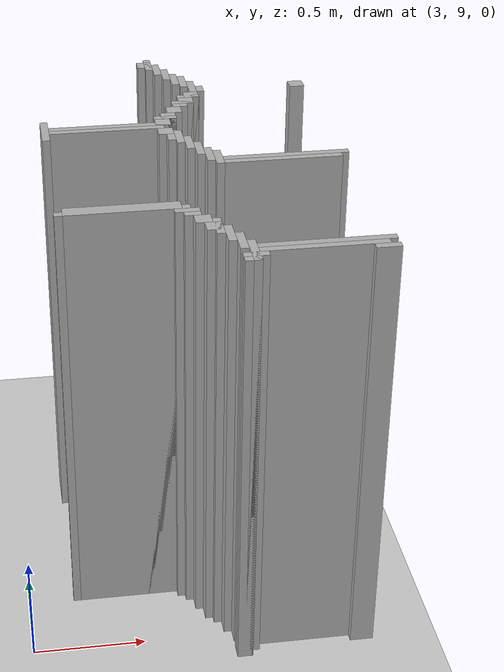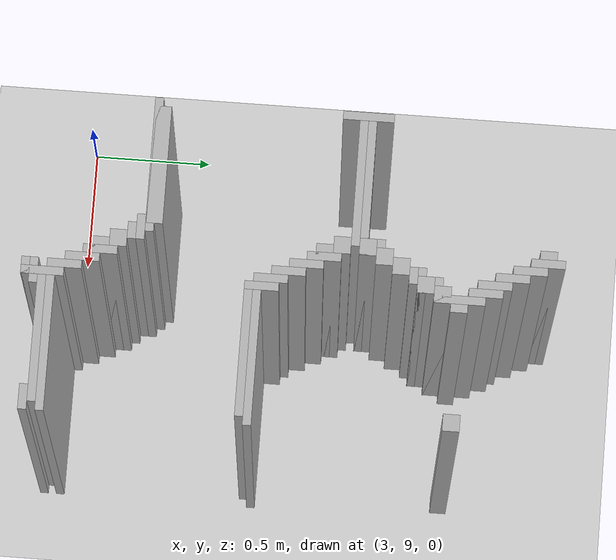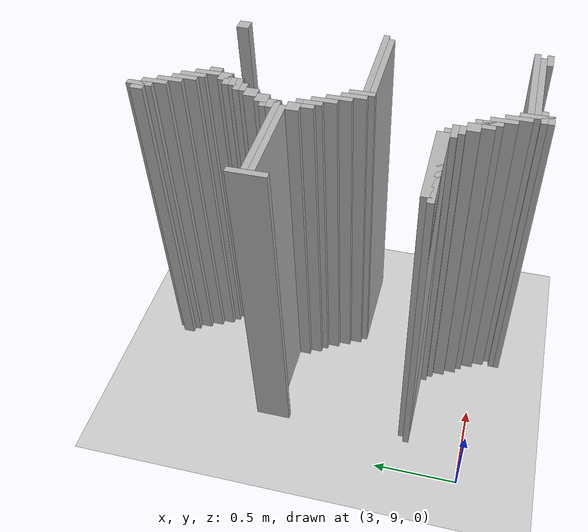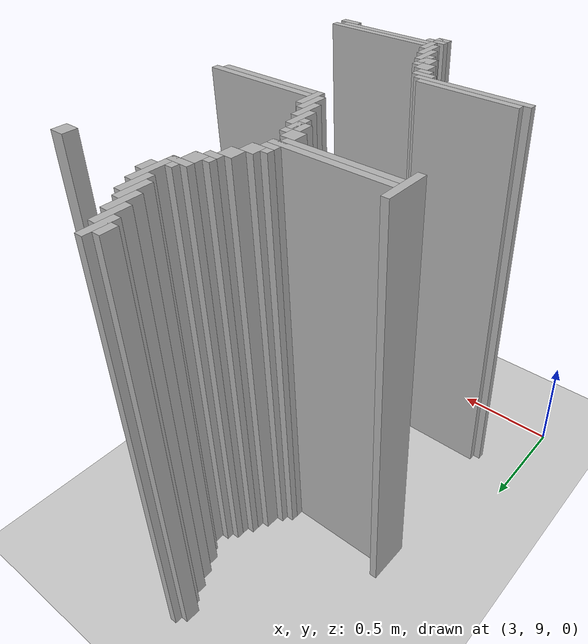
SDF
<sdf version="1.6">
 <world name="slam_world">
  <model name="ground_plane">
   <static>true</static>
   <link name="link">
    <collision name="collision">
     <geometry><plane><normal>0 0 1</normal><size>100 100</size></plane></geometry>
    </collision>
    <visual name="visual">
     <geometry><plane><normal>0 0 1</normal><size>100 100</size></plane></geometry>
     <material>
      <ambient>0.8 0.8 0.8 1</ambient>
      <diffuse>0.8 0.8 0.8 1</diffuse>
      <specular>0.8 0.8 0.8 1</specular>
     </material>
    </visual>
   </link>
  </model>
  <model name="wall_2106">
   <static>true</static>
   <pose>3.776102088167053 10.962877030162412 1.0 0 0 0</pose>
   <link name="link">
    <collision name="collision">
     <geometry><box><size>0.03480278422273782 0.13921113689095127 2.0</size></box></geometry>
    </collision>
    <visual name="visual">
     <geometry><box><size>0.03480278422273782 0.13921113689095127 2.0</size></box></geometry>
     <material><ambient>0.5 0.5 0.5 1</ambient><diffuse>0.7 0.7 0.7 1</diffuse></material>
    </visual>
   </link>
  </model>
  <model name="wall_2117">
   <static>true</static>
   <pose>3.7587006960556844 10.962877030162412 1.0 0 0 0</pose>
   <link name="link">
    <collision name="collision">
     <geometry><box><size>0.06960556844547564 0.06960556844547564 2.0</size></box></geometry>
    </collision>
    <visual name="visual">
     <geometry><box><size>0.06960556844547564 0.06960556844547564 2.0</size></box></geometry>
     <material><ambient>0.5 0.5 0.5 1</ambient><diffuse>0.7 0.7 0.7 1</diffuse></material>
    </visual>
   </link>
  </model>
  <model name="wall_2130">
   <static>true</static>
   <pose>3.810904872389791 10.893271461716937 1.0 0 0 0</pose>
   <link name="link">
    <collision name="collision">
     <geometry><box><size>0.03480278422273782 0.13921113689095127 2.0</size></box></geometry>
    </collision>
    <visual name="visual">
     <geometry><box><size>0.03480278422273782 0.13921113689095127 2.0</size></box></geometry>
     <material><ambient>0.5 0.5 0.5 1</ambient><diffuse>0.7 0.7 0.7 1</diffuse></material>
    </visual>
   </link>
  </model>
  <model name="wall_2153">
   <static>true</static>
   <pose>3.845707656612529 10.82366589327146 1.0 0 0 0</pose>
   <link name="link">
    <collision name="collision">
     <geometry><box><size>0.03480278422273782 0.13921113689095127 2.0</size></box></geometry>
    </collision>
    <visual name="visual">
     <geometry><box><size>0.03480278422273782 0.13921113689095127 2.0</size></box></geometry>
     <material><ambient>0.5 0.5 0.5 1</ambient><diffuse>0.7 0.7 0.7 1</diffuse></material>
    </visual>
   </link>
  </model>
  <model name="wall_2166">
   <static>true</static>
   <pose>3.8805104408352666 10.754060324825986 1.0 0 0 0</pose>
   <link name="link">
    <collision name="collision">
     <geometry><box><size>0.03480278422273782 0.13921113689095127 2.0</size></box></geometry>
    </collision>
    <visual name="visual">
     <geometry><box><size>0.03480278422273782 0.13921113689095127 2.0</size></box></geometry>
     <material><ambient>0.5 0.5 0.5 1</ambient><diffuse>0.7 0.7 0.7 1</diffuse></material>
    </visual>
   </link>
  </model>
  <model name="wall_2179">
   <static>true</static>
   <pose>3.9153132250580045 10.719257540603248 1.0 0 0 0</pose>
   <link name="link">
    <collision name="collision">
     <geometry><box><size>0.03480278422273782 0.13921113689095127 2.0</size></box></geometry>
    </collision>
    <visual name="visual">
     <geometry><box><size>0.03480278422273782 0.13921113689095127 2.0</size></box></geometry>
     <material><ambient>0.5 0.5 0.5 1</ambient><diffuse>0.7 0.7 0.7 1</diffuse></material>
    </visual>
   </link>
  </model>
  <model name="wall_2199">
   <static>true</static>
   <pose>3.9501160092807424 10.614849187935034 1.0 0 0 0</pose>
   <link name="link">
    <collision name="collision">
     <geometry><box><size>0.03480278422273782 0.2088167053364269 2.0</size></box></geometry>
    </collision>
    <visual name="visual">
     <geometry><box><size>0.03480278422273782 0.2088167053364269 2.0</size></box></geometry>
     <material><ambient>0.5 0.5 0.5 1</ambient><diffuse>0.7 0.7 0.7 1</diffuse></material>
    </visual>
   </link>
  </model>
  <model name="wall_2219">
   <static>true</static>
   <pose>3.98491879350348 10.614849187935034 1.0 0 0 0</pose>
   <link name="link">
    <collision name="collision">
     <geometry><box><size>0.03480278422273782 0.06960556844547564 2.0</size></box></geometry>
    </collision>
    <visual name="visual">
     <geometry><box><size>0.03480278422273782 0.06960556844547564 2.0</size></box></geometry>
     <material><ambient>0.5 0.5 0.5 1</ambient><diffuse>0.7 0.7 0.7 1</diffuse></material>
    </visual>
   </link>
  </model>
  <model name="wall_2220">
   <static>true</static>
   <pose>4.454756380510441 10.614849187935034 1.0 0 0 0</pose>
   <link name="link">
    <collision name="collision">
     <geometry><box><size>0.06960556844547564 0.06960556844547564 2.0</size></box></geometry>
    </collision>
    <visual name="visual">
     <geometry><box><size>0.06960556844547564 0.06960556844547564 2.0</size></box></geometry>
     <material><ambient>0.5 0.5 0.5 1</ambient><diffuse>0.7 0.7 0.7 1</diffuse></material>
    </visual>
   </link>
  </model>
  <model name="wall_2239">
   <static>true</static>
   <pose>3.932714617169373 10.54524361948956 1.0 0 0 0</pose>
   <link name="link">
    <collision name="collision">
     <geometry><box><size>0.06960556844547564 0.06960556844547564 2.0</size></box></geometry>
    </collision>
    <visual name="visual">
     <geometry><box><size>0.06960556844547564 0.06960556844547564 2.0</size></box></geometry>
     <material><ambient>0.5 0.5 0.5 1</ambient><diffuse>0.7 0.7 0.7 1</diffuse></material>
    </visual>
   </link>
  </model>
  <model name="wall_2256">
   <static>true</static>
   <pose>3.9153132250580045 10.52784222737819 1.0 0 0 0</pose>
   <link name="link">
    <collision name="collision">
     <geometry><box><size>0.10440835266821345 0.03480278422273782 2.0</size></box></geometry>
    </collision>
    <visual name="visual">
     <geometry><box><size>0.10440835266821345 0.03480278422273782 2.0</size></box></geometry>
     <material><ambient>0.5 0.5 0.5 1</ambient><diffuse>0.7 0.7 0.7 1</diffuse></material>
    </visual>
   </link>
  </model>
  <model name="wall_2273">
   <static>true</static>
   <pose>3.897911832946636 10.475638051044083 1.0 0 0 0</pose>
   <link name="link">
    <collision name="collision">
     <geometry><box><size>0.06960556844547564 0.06960556844547564 2.0</size></box></geometry>
    </collision>
    <visual name="visual">
     <geometry><box><size>0.06960556844547564 0.06960556844547564 2.0</size></box></geometry>
     <material><ambient>0.5 0.5 0.5 1</ambient><diffuse>0.7 0.7 0.7 1</diffuse></material>
    </visual>
   </link>
  </model>
  <model name="wall_2290">
   <static>true</static>
   <pose>3.8805104408352666 10.458236658932714 1.0 0 0 0</pose>
   <link name="link">
    <collision name="collision">
     <geometry><box><size>0.10440835266821345 0.03480278422273782 2.0</size></box></geometry>
    </collision>
    <visual name="visual">
     <geometry><box><size>0.10440835266821345 0.03480278422273782 2.0</size></box></geometry>
     <material><ambient>0.5 0.5 0.5 1</ambient><diffuse>0.7 0.7 0.7 1</diffuse></material>
    </visual>
   </link>
  </model>
  <model name="wall_2304">
   <static>true</static>
   <pose>3.863109048723898 10.423433874709977 1.0 0 0 0</pose>
   <link name="link">
    <collision name="collision">
     <geometry><box><size>0.06960556844547564 0.03480278422273782 2.0</size></box></geometry>
    </collision>
    <visual name="visual">
     <geometry><box><size>0.06960556844547564 0.03480278422273782 2.0</size></box></geometry>
     <material><ambient>0.5 0.5 0.5 1</ambient><diffuse>0.7 0.7 0.7 1</diffuse></material>
    </visual>
   </link>
  </model>
  <model name="wall_2315">
   <static>true</static>
   <pose>3.82830626450116 10.37122969837587 1.0 0 0 0</pose>
   <link name="link">
    <collision name="collision">
     <geometry><box><size>0.06960556844547564 0.06960556844547564 2.0</size></box></geometry>
    </collision>
    <visual name="visual">
     <geometry><box><size>0.06960556844547564 0.06960556844547564 2.0</size></box></geometry>
     <material><ambient>0.5 0.5 0.5 1</ambient><diffuse>0.7 0.7 0.7 1</diffuse></material>
    </visual>
   </link>
  </model>
  <model name="wall_2332">
   <static>true</static>
   <pose>3.793503480278422 10.301624129930394 1.0 0 0 0</pose>
   <link name="link">
    <collision name="collision">
     <geometry><box><size>0.06960556844547564 0.06960556844547564 2.0</size></box></geometry>
    </collision>
    <visual name="visual">
     <geometry><box><size>0.06960556844547564 0.06960556844547564 2.0</size></box></geometry>
     <material><ambient>0.5 0.5 0.5 1</ambient><diffuse>0.7 0.7 0.7 1</diffuse></material>
    </visual>
   </link>
  </model>
  <model name="wall_2348">
   <static>true</static>
   <pose>3.219257540603248 10.19721577726218 1.0 0 0 0</pose>
   <link name="link">
    <collision name="collision">
     <geometry><box><size>0.03480278422273782 0.2088167053364269 2.0</size></box></geometry>
    </collision>
    <visual name="visual">
     <geometry><box><size>0.03480278422273782 0.2088167053364269 2.0</size></box></geometry>
     <material><ambient>0.5 0.5 0.5 1</ambient><diffuse>0.7 0.7 0.7 1</diffuse></material>
    </visual>
   </link>
  </model>
  <model name="wall_2349">
   <static>true</static>
   <pose>3.776102088167053 10.284222737819025 1.0 0 0 0</pose>
   <link name="link">
    <collision name="collision">
     <geometry><box><size>0.10440835266821345 0.03480278422273782 2.0</size></box></geometry>
    </collision>
    <visual name="visual">
     <geometry><box><size>0.10440835266821345 0.03480278422273782 2.0</size></box></geometry>
     <material><ambient>0.5 0.5 0.5 1</ambient><diffuse>0.7 0.7 0.7 1</diffuse></material>
    </visual>
   </link>
  </model>
  <model name="wall_2363">
   <static>true</static>
   <pose>3.7587006960556844 10.232018561484919 1.0 0 0 0</pose>
   <link name="link">
    <collision name="collision">
     <geometry><box><size>0.06960556844547564 0.06960556844547564 2.0</size></box></geometry>
    </collision>
    <visual name="visual">
     <geometry><box><size>0.06960556844547564 0.06960556844547564 2.0</size></box></geometry>
     <material><ambient>0.5 0.5 0.5 1</ambient><diffuse>0.7 0.7 0.7 1</diffuse></material>
    </visual>
   </link>
  </model>
  <model name="wall_2372">
   <static>true</static>
   <pose>3.51508120649652 10.214617169373549 1.0 0 0 0</pose>
   <link name="link">
    <collision name="collision">
     <geometry><box><size>0.5568445475638051 0.03480278422273782 2.0</size></box></geometry>
    </collision>
    <visual name="visual">
     <geometry><box><size>0.5568445475638051 0.03480278422273782 2.0</size></box></geometry>
     <material><ambient>0.5 0.5 0.5 1</ambient><diffuse>0.7 0.7 0.7 1</diffuse></material>
    </visual>
   </link>
  </model>
  <model name="wall_2384">
   <static>true</static>
   <pose>3.4976798143851506 10.179814385150811 1.0 0 0 0</pose>
   <link name="link">
    <collision name="collision">
     <geometry><box><size>0.5220417633410672 0.03480278422273782 2.0</size></box></geometry>
    </collision>
    <visual name="visual">
     <geometry><box><size>0.5220417633410672 0.03480278422273782 2.0</size></box></geometry>
     <material><ambient>0.5 0.5 0.5 1</ambient><diffuse>0.7 0.7 0.7 1</diffuse></material>
    </visual>
   </link>
  </model>
  <model name="wall_2393">
   <static>true</static>
   <pose>3.7587006960556844 10.127610208816705 1.0 0 0 0</pose>
   <link name="link">
    <collision name="collision">
     <geometry><box><size>0.06960556844547564 0.06960556844547564 2.0</size></box></geometry>
    </collision>
    <visual name="visual">
     <geometry><box><size>0.06960556844547564 0.06960556844547564 2.0</size></box></geometry>
     <material><ambient>0.5 0.5 0.5 1</ambient><diffuse>0.7 0.7 0.7 1</diffuse></material>
    </visual>
   </link>
  </model>
  <model name="wall_2409">
   <static>true</static>
   <pose>3.810904872389791 10.058004640371228 1.0 0 0 0</pose>
   <link name="link">
    <collision name="collision">
     <geometry><box><size>0.03480278422273782 0.13921113689095127 2.0</size></box></geometry>
    </collision>
    <visual name="visual">
     <geometry><box><size>0.03480278422273782 0.13921113689095127 2.0</size></box></geometry>
     <material><ambient>0.5 0.5 0.5 1</ambient><diffuse>0.7 0.7 0.7 1</diffuse></material>
    </visual>
   </link>
  </model>
  <model name="wall_2425">
   <static>true</static>
   <pose>3.793503480278422 10.058004640371228 1.0 0 0 0</pose>
   <link name="link">
    <collision name="collision">
     <geometry><box><size>0.06960556844547564 0.06960556844547564 2.0</size></box></geometry>
    </collision>
    <visual name="visual">
     <geometry><box><size>0.06960556844547564 0.06960556844547564 2.0</size></box></geometry>
     <material><ambient>0.5 0.5 0.5 1</ambient><diffuse>0.7 0.7 0.7 1</diffuse></material>
    </visual>
   </link>
  </model>
  <model name="wall_2441">
   <static>true</static>
   <pose>3.845707656612529 9.988399071925754 1.0 0 0 0</pose>
   <link name="link">
    <collision name="collision">
     <geometry><box><size>0.03480278422273782 0.13921113689095127 2.0</size></box></geometry>
    </collision>
    <visual name="visual">
     <geometry><box><size>0.03480278422273782 0.13921113689095127 2.0</size></box></geometry>
     <material><ambient>0.5 0.5 0.5 1</ambient><diffuse>0.7 0.7 0.7 1</diffuse></material>
    </visual>
   </link>
  </model>
  <model name="wall_2466">
   <static>true</static>
   <pose>3.8805104408352666 9.918793503480279 1.0 0 0 0</pose>
   <link name="link">
    <collision name="collision">
     <geometry><box><size>0.03480278422273782 0.13921113689095127 2.0</size></box></geometry>
    </collision>
    <visual name="visual">
     <geometry><box><size>0.03480278422273782 0.13921113689095127 2.0</size></box></geometry>
     <material><ambient>0.5 0.5 0.5 1</ambient><diffuse>0.7 0.7 0.7 1</diffuse></material>
    </visual>
   </link>
  </model>
  <model name="wall_2482">
   <static>true</static>
   <pose>3.9153132250580045 9.849187935034802 1.0 0 0 0</pose>
   <link name="link">
    <collision name="collision">
     <geometry><box><size>0.03480278422273782 0.13921113689095127 2.0</size></box></geometry>
    </collision>
    <visual name="visual">
     <geometry><box><size>0.03480278422273782 0.13921113689095127 2.0</size></box></geometry>
     <material><ambient>0.5 0.5 0.5 1</ambient><diffuse>0.7 0.7 0.7 1</diffuse></material>
    </visual>
   </link>
  </model>
  <model name="wall_2498">
   <static>true</static>
   <pose>3.9501160092807424 9.814385150812065 1.0 0 0 0</pose>
   <link name="link">
    <collision name="collision">
     <geometry><box><size>0.03480278422273782 0.13921113689095127 2.0</size></box></geometry>
    </collision>
    <visual name="visual">
     <geometry><box><size>0.03480278422273782 0.13921113689095127 2.0</size></box></geometry>
     <material><ambient>0.5 0.5 0.5 1</ambient><diffuse>0.7 0.7 0.7 1</diffuse></material>
    </visual>
   </link>
  </model>
  <model name="wall_2523">
   <static>true</static>
   <pose>4.2459396751740135 9.796983758700696 1.0 0 0 0</pose>
   <link name="link">
    <collision name="collision">
     <geometry><box><size>0.5568445475638051 0.03480278422273782 2.0</size></box></geometry>
    </collision>
    <visual name="visual">
     <geometry><box><size>0.5568445475638051 0.03480278422273782 2.0</size></box></geometry>
     <material><ambient>0.5 0.5 0.5 1</ambient><diffuse>0.7 0.7 0.7 1</diffuse></material>
    </visual>
   </link>
  </model>
  <model name="wall_2536">
   <static>true</static>
   <pose>4.228538283062645 9.762180974477959 1.0 0 0 0</pose>
   <link name="link">
    <collision name="collision">
     <geometry><box><size>0.5220417633410672 0.03480278422273782 2.0</size></box></geometry>
    </collision>
    <visual name="visual">
     <geometry><box><size>0.5220417633410672 0.03480278422273782 2.0</size></box></geometry>
     <material><ambient>0.5 0.5 0.5 1</ambient><diffuse>0.7 0.7 0.7 1</diffuse></material>
    </visual>
   </link>
  </model>
  <model name="wall_2634">
   <static>true</static>
   <pose>3.480278422273782 9.361948955916473 1.0 0 0 0</pose>
   <link name="link">
    <collision name="collision">
     <geometry><box><size>0.4872389791183295 0.06960556844547564 2.0</size></box></geometry>
    </collision>
    <visual name="visual">
     <geometry><box><size>0.4872389791183295 0.06960556844547564 2.0</size></box></geometry>
     <material><ambient>0.5 0.5 0.5 1</ambient><diffuse>0.7 0.7 0.7 1</diffuse></material>
    </visual>
   </link>
  </model>
  <model name="wall_2647">
   <static>true</static>
   <pose>3.480278422273782 9.344547563805104 1.0 0 0 0</pose>
   <link name="link">
    <collision name="collision">
     <geometry><box><size>0.5568445475638051 0.03480278422273782 2.0</size></box></geometry>
    </collision>
    <visual name="visual">
     <geometry><box><size>0.5568445475638051 0.03480278422273782 2.0</size></box></geometry>
     <material><ambient>0.5 0.5 0.5 1</ambient><diffuse>0.7 0.7 0.7 1</diffuse></material>
    </visual>
   </link>
  </model>
  <model name="wall_2660">
   <static>true</static>
   <pose>3.741299303944315 9.309744779582367 1.0 0 0 0</pose>
   <link name="link">
    <collision name="collision">
     <geometry><box><size>0.10440835266821345 0.03480278422273782 2.0</size></box></geometry>
    </collision>
    <visual name="visual">
     <geometry><box><size>0.10440835266821345 0.03480278422273782 2.0</size></box></geometry>
     <material><ambient>0.5 0.5 0.5 1</ambient><diffuse>0.7 0.7 0.7 1</diffuse></material>
    </visual>
   </link>
  </model>
  <model name="wall_2677">
   <static>true</static>
   <pose>3.7587006960556844 9.274941995359628 1.0 0 0 0</pose>
   <link name="link">
    <collision name="collision">
     <geometry><box><size>0.06960556844547564 0.03480278422273782 2.0</size></box></geometry>
    </collision>
    <visual name="visual">
     <geometry><box><size>0.06960556844547564 0.03480278422273782 2.0</size></box></geometry>
     <material><ambient>0.5 0.5 0.5 1</ambient><diffuse>0.7 0.7 0.7 1</diffuse></material>
    </visual>
   </link>
  </model>
  <model name="wall_2691">
   <static>true</static>
   <pose>3.793503480278422 9.222737819025522 1.0 0 0 0</pose>
   <link name="link">
    <collision name="collision">
     <geometry><box><size>0.06960556844547564 0.06960556844547564 2.0</size></box></geometry>
    </collision>
    <visual name="visual">
     <geometry><box><size>0.06960556844547564 0.06960556844547564 2.0</size></box></geometry>
     <material><ambient>0.5 0.5 0.5 1</ambient><diffuse>0.7 0.7 0.7 1</diffuse></material>
    </visual>
   </link>
  </model>
  <model name="wall_2709">
   <static>true</static>
   <pose>3.845707656612529 9.153132250580047 1.0 0 0 0</pose>
   <link name="link">
    <collision name="collision">
     <geometry><box><size>0.03480278422273782 0.13921113689095127 2.0</size></box></geometry>
    </collision>
    <visual name="visual">
     <geometry><box><size>0.03480278422273782 0.13921113689095127 2.0</size></box></geometry>
     <material><ambient>0.5 0.5 0.5 1</ambient><diffuse>0.7 0.7 0.7 1</diffuse></material>
    </visual>
   </link>
  </model>
  <model name="wall_2725">
   <static>true</static>
   <pose>3.82830626450116 9.153132250580047 1.0 0 0 0</pose>
   <link name="link">
    <collision name="collision">
     <geometry><box><size>0.06960556844547564 0.06960556844547564 2.0</size></box></geometry>
    </collision>
    <visual name="visual">
     <geometry><box><size>0.06960556844547564 0.06960556844547564 2.0</size></box></geometry>
     <material><ambient>0.5 0.5 0.5 1</ambient><diffuse>0.7 0.7 0.7 1</diffuse></material>
    </visual>
   </link>
  </model>
  <model name="wall_2739">
   <static>true</static>
   <pose>3.8805104408352666 9.08352668213457 1.0 0 0 0</pose>
   <link name="link">
    <collision name="collision">
     <geometry><box><size>0.03480278422273782 0.13921113689095127 2.0</size></box></geometry>
    </collision>
    <visual name="visual">
     <geometry><box><size>0.03480278422273782 0.13921113689095127 2.0</size></box></geometry>
     <material><ambient>0.5 0.5 0.5 1</ambient><diffuse>0.7 0.7 0.7 1</diffuse></material>
    </visual>
   </link>
  </model>
  <model name="wall_2768">
   <static>true</static>
   <pose>3.9153132250580045 9.013921113689095 1.0 0 0 0</pose>
   <link name="link">
    <collision name="collision">
     <geometry><box><size>0.03480278422273782 0.13921113689095127 2.0</size></box></geometry>
    </collision>
    <visual name="visual">
     <geometry><box><size>0.03480278422273782 0.13921113689095127 2.0</size></box></geometry>
     <material><ambient>0.5 0.5 0.5 1</ambient><diffuse>0.7 0.7 0.7 1</diffuse></material>
    </visual>
   </link>
  </model>
  <model name="wall_2786">
   <static>true</static>
   <pose>3.9501160092807424 8.92691415313225 1.0 0 0 0</pose>
   <link name="link">
    <collision name="collision">
     <geometry><box><size>0.03480278422273782 0.17401392111368907 2.0</size></box></geometry>
    </collision>
    <visual name="visual">
     <geometry><box><size>0.03480278422273782 0.17401392111368907 2.0</size></box></geometry>
     <material><ambient>0.5 0.5 0.5 1</ambient><diffuse>0.7 0.7 0.7 1</diffuse></material>
    </visual>
   </link>
  </model>
  <model name="wall_2802">
   <static>true</static>
   <pose>4.2459396751740135 8.961716937354987 1.0 0 0 0</pose>
   <link name="link">
    <collision name="collision">
     <geometry><box><size>0.5568445475638051 0.03480278422273782 2.0</size></box></geometry>
    </collision>
    <visual name="visual">
     <geometry><box><size>0.5568445475638051 0.03480278422273782 2.0</size></box></geometry>
     <material><ambient>0.5 0.5 0.5 1</ambient><diffuse>0.7 0.7 0.7 1</diffuse></material>
    </visual>
   </link>
  </model>
  <model name="wall_2816">
   <static>true</static>
   <pose>4.228538283062645 8.92691415313225 1.0 0 0 0</pose>
   <link name="link">
    <collision name="collision">
     <geometry><box><size>0.5220417633410672 0.03480278422273782 2.0</size></box></geometry>
    </collision>
    <visual name="visual">
     <geometry><box><size>0.5220417633410672 0.03480278422273782 2.0</size></box></geometry>
     <material><ambient>0.5 0.5 0.5 1</ambient><diffuse>0.7 0.7 0.7 1</diffuse></material>
    </visual>
   </link>
  </model>
  <model name="wall_2829">
   <static>true</static>
   <pose>3.9501160092807424 8.892111368909513 1.0 0 0 0</pose>
   <link name="link">
    <collision name="collision">
     <geometry><box><size>0.10440835266821345 0.03480278422273782 2.0</size></box></geometry>
    </collision>
    <visual name="visual">
     <geometry><box><size>0.10440835266821345 0.03480278422273782 2.0</size></box></geometry>
     <material><ambient>0.5 0.5 0.5 1</ambient><diffuse>0.7 0.7 0.7 1</diffuse></material>
    </visual>
   </link>
  </model>
  <model name="wall_2830">
   <static>true</static>
   <pose>4.472157772621809 8.892111368909513 1.0 0 0 0</pose>
   <link name="link">
    <collision name="collision">
     <geometry><box><size>0.10440835266821345 0.03480278422273782 2.0</size></box></geometry>
    </collision>
    <visual name="visual">
     <geometry><box><size>0.10440835266821345 0.03480278422273782 2.0</size></box></geometry>
     <material><ambient>0.5 0.5 0.5 1</ambient><diffuse>0.7 0.7 0.7 1</diffuse></material>
    </visual>
   </link>
  </model>
  <model name="wall_2847">
   <static>true</static>
   <pose>3.932714617169373 8.857308584686775 1.0 0 0 0</pose>
   <link name="link">
    <collision name="collision">
     <geometry><box><size>0.06960556844547564 0.03480278422273782 2.0</size></box></geometry>
    </collision>
    <visual name="visual">
     <geometry><box><size>0.06960556844547564 0.03480278422273782 2.0</size></box></geometry>
     <material><ambient>0.5 0.5 0.5 1</ambient><diffuse>0.7 0.7 0.7 1</diffuse></material>
    </visual>
   </link>
  </model>
 </world>
</sdf>
